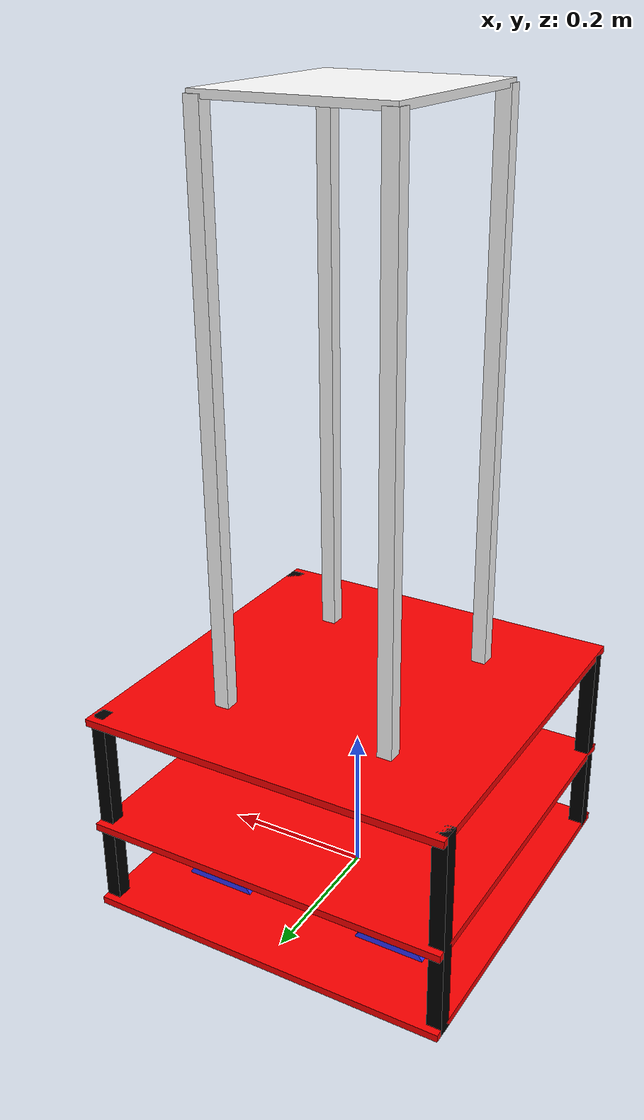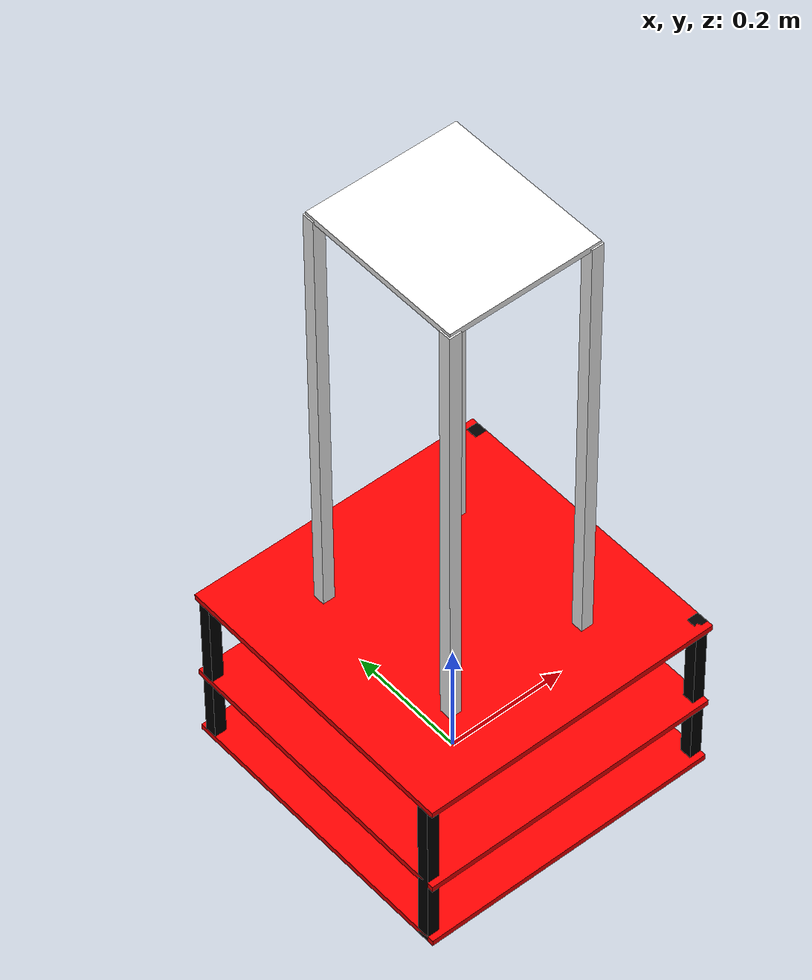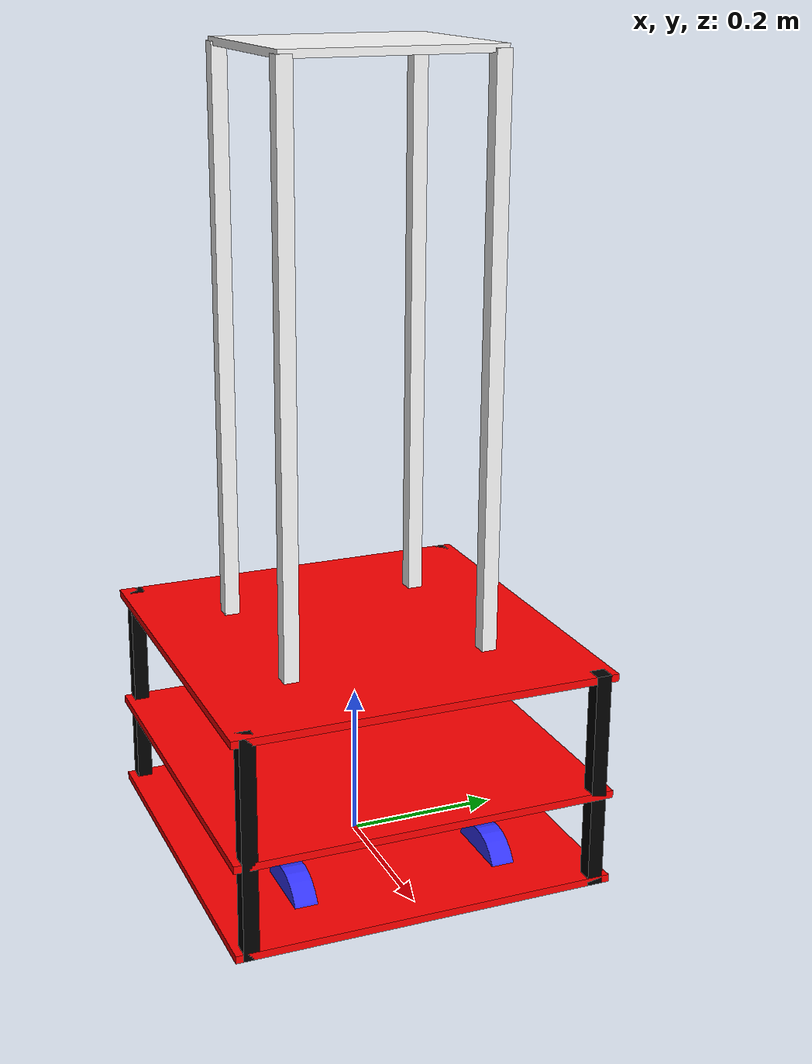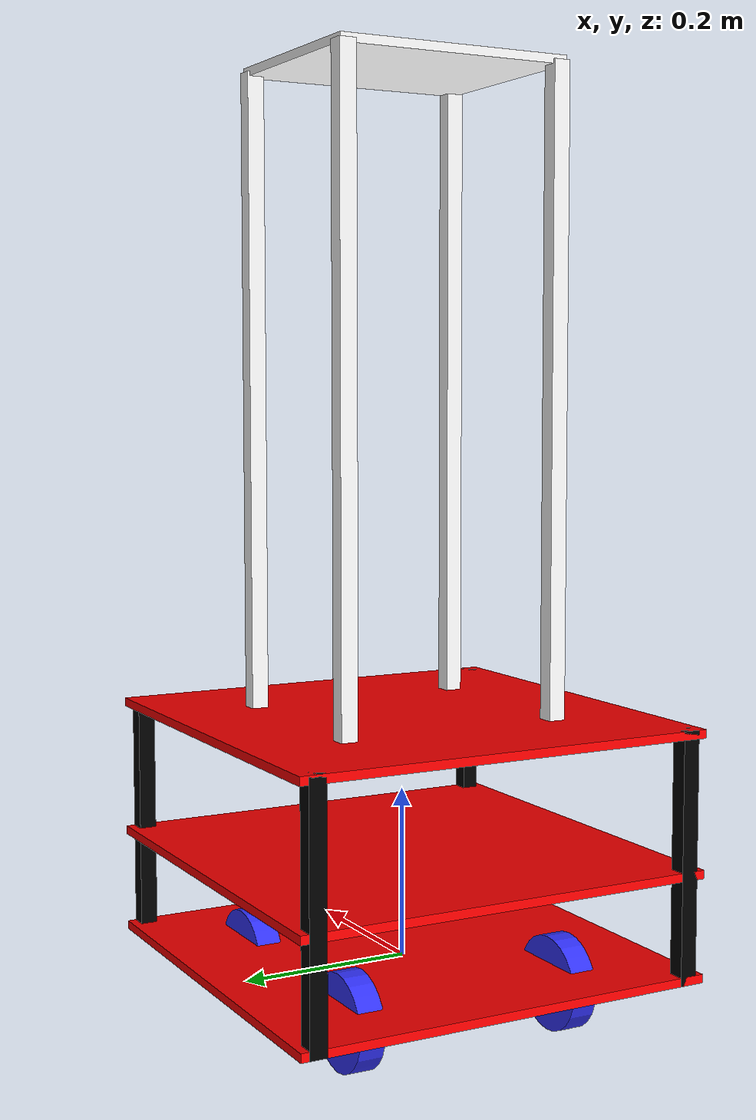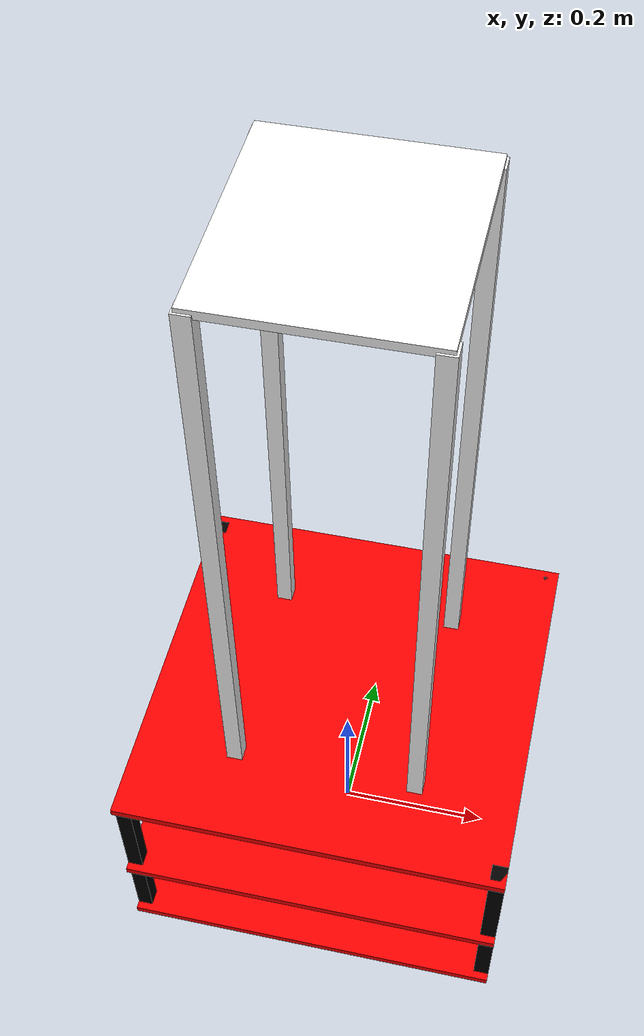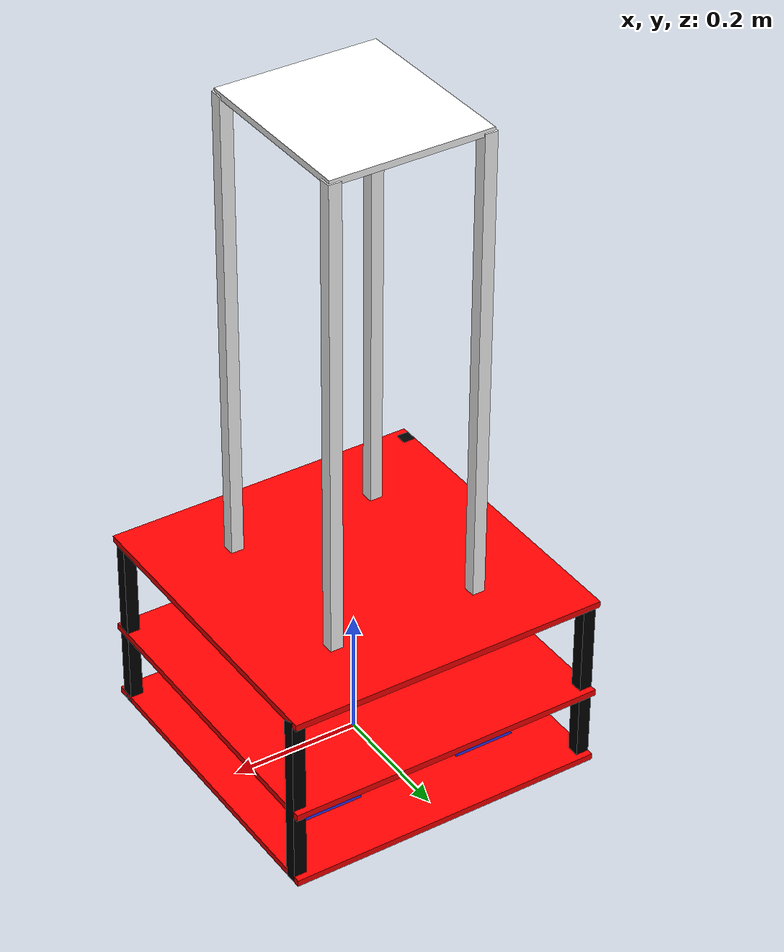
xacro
<?xml version="1.0"?>
<robot xmlns:xacro="http://www.ros.org/wiki/xacro">

  <!-- Include inertial macro definitions -->
  <xacro:include filename="inertial_macros.xacro"/>

  <!-- Materials -->
  <material name="white"><color rgba="1 1 1 1"/></material>
  <material name="blue"><color rgba="0.2 0.2 1 1"/></material>
  <material name="black"><color rgba="0 0 0 1"/></material>
  <material name="red"><color rgba="1 0 0 1"/></material>

  <!-- Base Link -->
  <link name="base_link"/>

  <!-- Chassis -->
  <joint name="chassis_joint" type="fixed">
    <parent link="base_link"/>
    <child link="chassis"/>
    <origin xyz="0 0 0"/>
  </joint>

  <link name="chassis"/>

  <!-- Top Pillars Macro -->
  <xacro:macro name="top_pillar" params="name x y z">
    <joint name="${name}_joint" type="fixed">
      <parent link="chassis"/>
      <child link="${name}"/>
      <origin xyz="${x} ${y} ${z}"/>
    </joint>
    <link name="${name}">
      <visual>
        <geometry><box size="0.02 0.02 0.74"/></geometry>
        <laser_retro>0.0</laser_retro>
        <material name="white"/>
      </visual>
      <collision>
        <geometry><box size="0.02 0.02 0.74"/></geometry>
      </collision>
      <xacro:inertial_box mass="0.3" x="0.02" y="0.02" z="0.74">
        <origin xyz="0 0 0" rpy="0 0 0"/>
      </xacro:inertial_box>
    </link>
  </xacro:macro>

  <!-- Top Four Pillars -->
  <xacro:top_pillar name="top_pillar_fl" x="0.1175" y="0.1325" z="0.66"/>
  <xacro:top_pillar name="top_pillar_fr" x="0.1175" y="-0.1325" z="0.66"/>
  <xacro:top_pillar name="top_pillar_rl" x="-0.1175" y="0.1325" z="0.66"/>
  <xacro:top_pillar name="top_pillar_rr" x="-0.1175" y="-0.1325" z="0.66"/>

  <!-- Bottom Pillars Macro -->
  <!-- Bottom Pillars Macro -->
<xacro:macro name="pillar" params="name x y z">
  <joint name="${name}_joint" type="fixed">
    <parent link="chassis"/>
    <child link="${name}"/>
    <origin xyz="${x} ${y} ${z}"/>
  </joint>
  <link name="${name}">
    <visual>
      <geometry><box size="0.02 0.02 0.29"/></geometry>
      <material name="black"/>
    </visual>
    <collision>
      <geometry><box size="0.02 0.02 0.29"/></geometry>
    </collision>
    <xacro:inertial_box mass="0.1" x="0.02" y="0.02" z="0.29">
      <origin xyz="0 0 0" rpy="0 0 0"/>
    </xacro:inertial_box>
  </link>
</xacro:macro>

  <!-- Four Bottom Pillars -->
  <xacro:pillar name="pillar_fl" x="0.24" y="0.23" z="0.145"/>
  <xacro:pillar name="pillar_fr" x="0.24" y="-0.23" z="0.145"/>
  <xacro:pillar name="pillar_rl" x="-0.24" y="0.23" z="0.145"/>
  <xacro:pillar name="pillar_rr" x="-0.24" y="-0.23" z="0.145"/>

  <!-- Plates Macro -->
  <xacro:macro name="plate" params="name z">
    <joint name="${name}_joint" type="fixed">
      <parent link="chassis"/>
      <child link="${name}"/>
      <origin xyz="0 0 ${z}"/>
    </joint>
    <link name="${name}">
      <visual>
        <geometry><box size="0.5 0.5 0.01"/></geometry>
        <material name="red"/>
      </visual>
      <collision>
        <geometry><box size="0.5 0.5 0.01"/></geometry>
      </collision>
      <xacro:inertial_box mass="0.2" x="0.5" y="0.5" z="0.01">
        <origin xyz="0 0 0" rpy="0 0 0"/>
      </xacro:inertial_box>
    </link>
  </xacro:macro>
<!--Top Plates Macro -->
  <xacro:macro name="top_plate" params="name z">
    <joint name="${name}_joint" type="fixed">
      <parent link="chassis"/>
      <child link="${name}"/>
      <origin xyz="0 0 ${z}"/>
    </joint>
    <link name="${name}">
      <visual>
        <geometry><box size="0.25 0.28 0.01"/></geometry>
        <material name="white"/>
      </visual>
      <collision>
        <geometry><box size="0.255 0.285 0.01"/></geometry>
      </collision>
      <xacro:inertial_box mass="0.2" x="0.255" y="0.285" z="0.01">
        <origin xyz="0 0 0" rpy="0 0 0"/>
      </xacro:inertial_box>
    </link>
  </xacro:macro>
   <!-- Top Plate -->
<xacro:top_plate name="plate_top_cover" z="1.03"/>

  <!-- Three Plates -->
  <xacro:plate name="plate_bottom" z="0.005"/>
  <xacro:plate name="plate_middle" z="0.125"/>
  <xacro:plate name="plate_top" z="0.285"/>

  <!-- Wheels Macro -->
  <!-- Wheels Macro -->
<xacro:macro name="wheel" params="name x y rpy_x rpy_y rpy_z direction fixed:=false">
  <xacro:if value="${fixed == 'true'}">
    <joint name="${name}_joint" type="fixed">
      <parent link="base_link"/>
      <child link="${name}"/>
      <origin xyz="${x} ${y} -0.015" rpy="${rpy_x} ${rpy_y} ${rpy_z}"/>
    </joint>
  </xacro:if>
  <xacro:unless value="${fixed == 'true'}">
    <joint name="${name}_joint" type="continuous">
      <parent link="base_link"/>
      <child link="${name}"/>
      <origin xyz="${x} ${y} -0.015" rpy="${rpy_x} ${rpy_y} ${rpy_z}"/>
      <axis xyz="0 0 ${direction}"/>
    </joint>
  </xacro:unless>
  <link name="${name}">
    <visual>
      <geometry><cylinder radius="0.055" length="0.03"/></geometry>
      <material name="blue"/>
    </visual>
    <collision>
      <geometry><cylinder radius="0.055" length="0.03"/></geometry>
    </collision>
    <xacro:inertial_cylinder mass="1.5" length="0.03" radius="0.055">
      <origin xyz="0 0 0" rpy="0 0 0"/>
    </xacro:inertial_cylinder>
  </link>
</xacro:macro>

<!-- Gazeboo -->

  <!-- Four Wheels -->
  <!-- Rear Wheels: motor-driven -->
<xacro:wheel name="rear_left_wheel"  x="-0.13" y="0.135"  rpy_x="-${pi/2}" rpy_y="0" rpy_z="0" direction="1"/>
<xacro:wheel name="rear_right_wheel" x="-0.13" y="-0.135" rpy_x="${pi/2}"  rpy_y="0" rpy_z="0" direction="-1"/>

<!-- Front Wheels: fixed -->
<xacro:wheel name="front_left_wheel" x="0.13"  y="0.135"  rpy_x="-${pi/2}" rpy_y="0" rpy_z="0" direction="1" fixed="true"/>
<xacro:wheel name="front_right_wheel" x="0.13" y="-0.135" rpy_x="${pi/2}"  rpy_y="0" rpy_z="0" direction="-1" fixed="true"/>

<!-- Gazebo Material Assignments -->

<!-- Plates -->
<gazebo reference="plate_bottom"><material>Gazebo/Red</material></gazebo>
<gazebo reference="plate_middle"><material>Gazebo/Red</material></gazebo>
<gazebo reference="plate_top"><material>Gazebo/Red</material></gazebo>
<gazebo reference="plate_top_cover"><material>Gazebo/White</material></gazebo>

<!-- Pillars -->
<gazebo reference="pillar_fl"><material>Gazebo/Black</material></gazebo>
<gazebo reference="pillar_fr"><material>Gazebo/Black</material></gazebo>
<gazebo reference="pillar_rl"><material>Gazebo/Black</material></gazebo>
<gazebo reference="pillar_rr"><material>Gazebo/Black</material></gazebo>

<gazebo reference="top_pillar_fl"><material>Gazebo/White</material></gazebo>
<gazebo reference="top_pillar_fr"><material>Gazebo/White</material></gazebo>
<gazebo reference="top_pillar_rl"><material>Gazebo/White</material></gazebo>
<gazebo reference="top_pillar_rr"><material>Gazebo/White</material></gazebo>

<!-- Chassis -->
<gazebo reference="chassis"><material>Gazebo/White</material></gazebo>

<!-- Wheels -->
<gazebo reference="rear_left_wheel"><material>Gazebo/Blue</material></gazebo>
<gazebo reference="rear_right_wheel"><material>Gazebo/Blue</material></gazebo>
<gazebo reference="front_left_wheel"><material>Gazebo/Blue</material><mu1 value="0.001"/><mu2 value="0.001"/></gazebo>
<gazebo reference="front_right_wheel"><material>Gazebo/Blue</material><mu1 value="0.001"/><mu2 value="0.001"/></gazebo>

  <!-- Base Footprint Frame -->
  <joint name="base_footprint_joint" type="fixed">
    <parent link="base_link"/>
    <child link="base_footprint"/>
    <origin xyz="0 0 0" rpy="0 0 0"/>
  </joint>

  <link name="base_footprint"/>

</robot>
